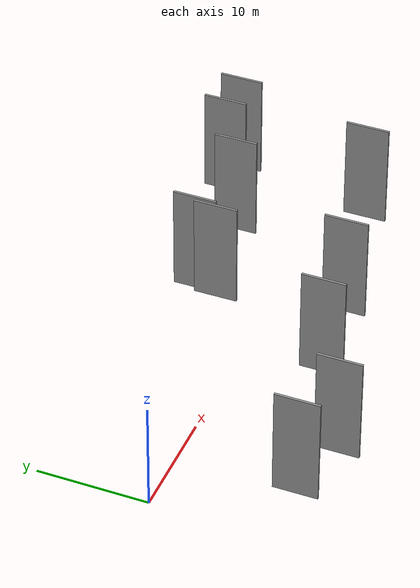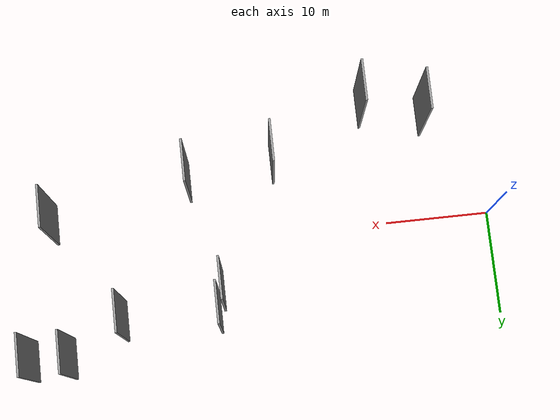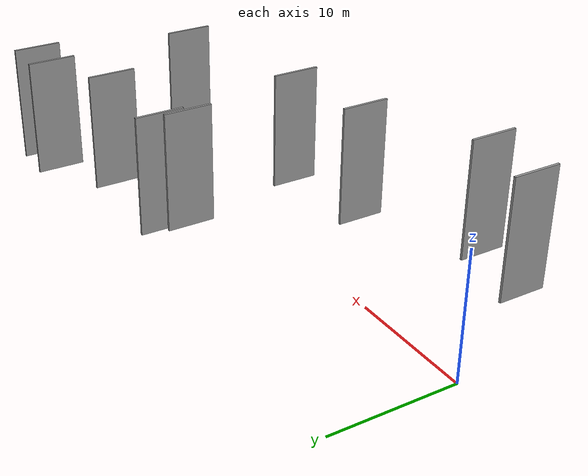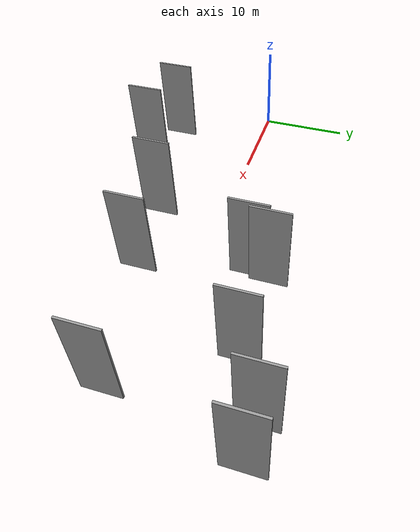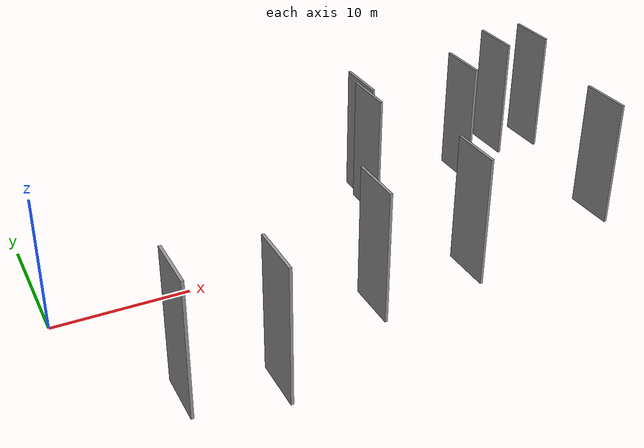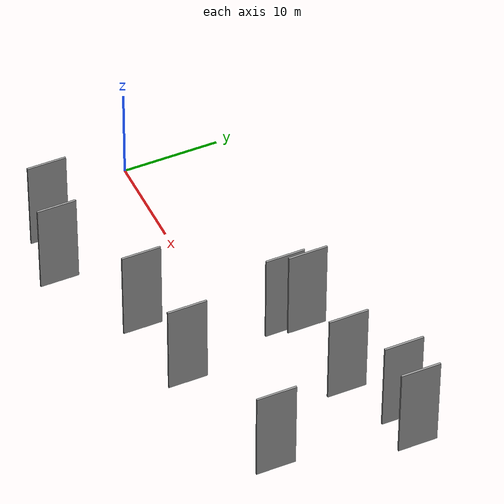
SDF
<sdf version="1.6">
 <world name="default">
  <scene>
   <sky><clouds><speed>12</speed></clouds></sky>
   <ambient>0.4 0.4 0.4 1</ambient>
   <background>0.7 0.7 0.7 1</background>
   <shadows>1</shadows>
  </scene>
  <gravity>0 0 -9.8066</gravity>
  <magnetic_field>6e-06 2.3e-05 -4.2e-05</magnetic_field>
  <physics default="0" name="default_physics" type="ode">
   <ode>
    <solver>
     <type>quick</type>
     <iters>10</iters>
     <sor>1.0</sor>
     <use_dynamic_moi_rescaling>0</use_dynamic_moi_rescaling>
    </solver>
    <constraints>
     <cfm>0</cfm>
     <erp>0.2</erp>
     <contact_max_correcting_vel>100</contact_max_correcting_vel>
     <contact_surface_layer>0.001</contact_surface_layer>
    </constraints>
   </ode>
   <max_step_size>0.004</max_step_size>
   <real_time_factor>1</real_time_factor>
   <real_time_update_rate>250</real_time_update_rate>
  </physics>
  <light name="sun" type="directional">
   <pose>0 0 10 0 0 0</pose>
   <diffuse>0.8 0.8 0.8 1</diffuse>
   <specular>0.2 0.2 0.2 1</specular>
   <attenuation>
    <range>1000</range>
    <constant>0.9</constant>
    <linear>0.01</linear>
    <quadratic>0.001</quadratic>
   </attenuation>
   <direction>-0.5 0.1 -0.9</direction>
  </light>
  <model name="grey_wall_1">
   <static>1</static>
   <pose>42.4989 -3.1583 0.0 0.000000 0.000000 1.570796</pose>
   <link name="link">
    <pose>0 0 5.00 0 0 0</pose>
    <collision name="collision"><geometry><box><size>4.00 0.2 10.00</size></box></geometry></collision>
    <visual name="visual">
     <cast_shadows>0</cast_shadows>
     <geometry><box><size>4.00 0.2 10.00</size></box></geometry>
     <material>
      <script>
       <uri>model://grey_wall/materials/scripts</uri>
       <uri>model://grey_wall/materials/textures</uri>
       <name>vrc/grey_wall</name>
      </script>
     </material>
    </visual>
   </link>
  </model>
  <model name="grey_wall_2">
   <static>1</static>
   <pose>27.2048 7.2094 0.0 0.000000 0.000000 1.570796</pose>
   <link name="link">
    <pose>0 0 5.00 0 0 0</pose>
    <collision name="collision"><geometry><box><size>4.00 0.2 10.00</size></box></geometry></collision>
    <visual name="visual">
     <cast_shadows>0</cast_shadows>
     <geometry><box><size>4.00 0.2 10.00</size></box></geometry>
     <material>
      <script>
       <uri>model://grey_wall/materials/scripts</uri>
       <uri>model://grey_wall/materials/textures</uri>
       <name>vrc/grey_wall</name>
      </script>
     </material>
    </visual>
   </link>
  </model>
  <model name="grey_wall_3">
   <static>1</static>
   <pose>41.6276 10.1830 0.0 0.000000 0.000000 1.570796</pose>
   <link name="link">
    <pose>0 0 5.00 0 0 0</pose>
    <collision name="collision"><geometry><box><size>4.00 0.2 10.00</size></box></geometry></collision>
    <visual name="visual">
     <cast_shadows>0</cast_shadows>
     <geometry><box><size>4.00 0.2 10.00</size></box></geometry>
     <material>
      <script>
       <uri>model://grey_wall/materials/scripts</uri>
       <uri>model://grey_wall/materials/textures</uri>
       <name>vrc/grey_wall</name>
      </script>
     </material>
    </visual>
   </link>
  </model>
  <model name="grey_wall_4">
   <static>1</static>
   <pose>20.7629 -7.1216 0.0 0.000000 0.000000 1.570796</pose>
   <link name="link">
    <pose>0 0 5.00 0 0 0</pose>
    <collision name="collision"><geometry><box><size>4.00 0.2 10.00</size></box></geometry></collision>
    <visual name="visual">
     <cast_shadows>0</cast_shadows>
     <geometry><box><size>4.00 0.2 10.00</size></box></geometry>
     <material>
      <script>
       <uri>model://grey_wall/materials/scripts</uri>
       <uri>model://grey_wall/materials/textures</uri>
       <name>vrc/grey_wall</name>
      </script>
     </material>
    </visual>
   </link>
  </model>
  <model name="grey_wall_5">
   <static>1</static>
   <pose>11.6014 -11.9338 0.0 0.000000 0.000000 1.570796</pose>
   <link name="link">
    <pose>0 0 5.00 0 0 0</pose>
    <collision name="collision"><geometry><box><size>4.00 0.2 10.00</size></box></geometry></collision>
    <visual name="visual">
     <cast_shadows>0</cast_shadows>
     <geometry><box><size>4.00 0.2 10.00</size></box></geometry>
     <material>
      <script>
       <uri>model://grey_wall/materials/scripts</uri>
       <uri>model://grey_wall/materials/textures</uri>
       <name>vrc/grey_wall</name>
      </script>
     </material>
    </visual>
   </link>
  </model>
  <model name="grey_wall_6">
   <static>1</static>
   <pose>45.2927 10.0913 0.0 0.000000 0.000000 1.570796</pose>
   <link name="link">
    <pose>0 0 5.00 0 0 0</pose>
    <collision name="collision"><geometry><box><size>4.00 0.2 10.00</size></box></geometry></collision>
    <visual name="visual">
     <cast_shadows>0</cast_shadows>
     <geometry><box><size>4.00 0.2 10.00</size></box></geometry>
     <material>
      <script>
       <uri>model://grey_wall/materials/scripts</uri>
       <uri>model://grey_wall/materials/textures</uri>
       <name>vrc/grey_wall</name>
      </script>
     </material>
    </visual>
   </link>
  </model>
  <model name="grey_wall_7">
   <static>1</static>
   <pose>36.3731 7.0640 0.0 0.000000 0.000000 1.570796</pose>
   <link name="link">
    <pose>0 0 5.00 0 0 0</pose>
    <collision name="collision"><geometry><box><size>4.00 0.2 10.00</size></box></geometry></collision>
    <visual name="visual">
     <cast_shadows>0</cast_shadows>
     <geometry><box><size>4.00 0.2 10.00</size></box></geometry>
     <material>
      <script>
       <uri>model://grey_wall/materials/scripts</uri>
       <uri>model://grey_wall/materials/textures</uri>
       <name>vrc/grey_wall</name>
      </script>
     </material>
    </visual>
   </link>
  </model>
  <model name="grey_wall_8">
   <static>1</static>
   <pose>26.7209 5.0740 0.0 0.000000 0.000000 1.570796</pose>
   <link name="link">
    <pose>0 0 5.00 0 0 0</pose>
    <collision name="collision"><geometry><box><size>4.00 0.2 10.00</size></box></geometry></collision>
    <visual name="visual">
     <cast_shadows>0</cast_shadows>
     <geometry><box><size>4.00 0.2 10.00</size></box></geometry>
     <material>
      <script>
       <uri>model://grey_wall/materials/scripts</uri>
       <uri>model://grey_wall/materials/textures</uri>
       <name>vrc/grey_wall</name>
      </script>
     </material>
    </visual>
   </link>
  </model>
  <model name="grey_wall_9">
   <static>1</static>
   <pose>5.6924 -10.5204 0.0 0.000000 0.000000 1.570796</pose>
   <link name="link">
    <pose>0 0 5.00 0 0 0</pose>
    <collision name="collision"><geometry><box><size>4.00 0.2 10.00</size></box></geometry></collision>
    <visual name="visual">
     <cast_shadows>0</cast_shadows>
     <geometry><box><size>4.00 0.2 10.00</size></box></geometry>
     <material>
      <script>
       <uri>model://grey_wall/materials/scripts</uri>
       <uri>model://grey_wall/materials/textures</uri>
       <name>vrc/grey_wall</name>
      </script>
     </material>
    </visual>
   </link>
  </model>
  <model name="grey_wall_10">
   <static>1</static>
   <pose>29.0743 -6.0765 0.0 0.000000 0.000000 1.570796</pose>
   <link name="link">
    <pose>0 0 5.00 0 0 0</pose>
    <collision name="collision"><geometry><box><size>4.00 0.2 10.00</size></box></geometry></collision>
    <visual name="visual">
     <cast_shadows>0</cast_shadows>
     <geometry><box><size>4.00 0.2 10.00</size></box></geometry>
     <material>
      <script>
       <uri>model://grey_wall/materials/scripts</uri>
       <uri>model://grey_wall/materials/textures</uri>
       <name>vrc/grey_wall</name>
      </script>
     </material>
    </visual>
   </link>
  </model>
 </world>
</sdf>
